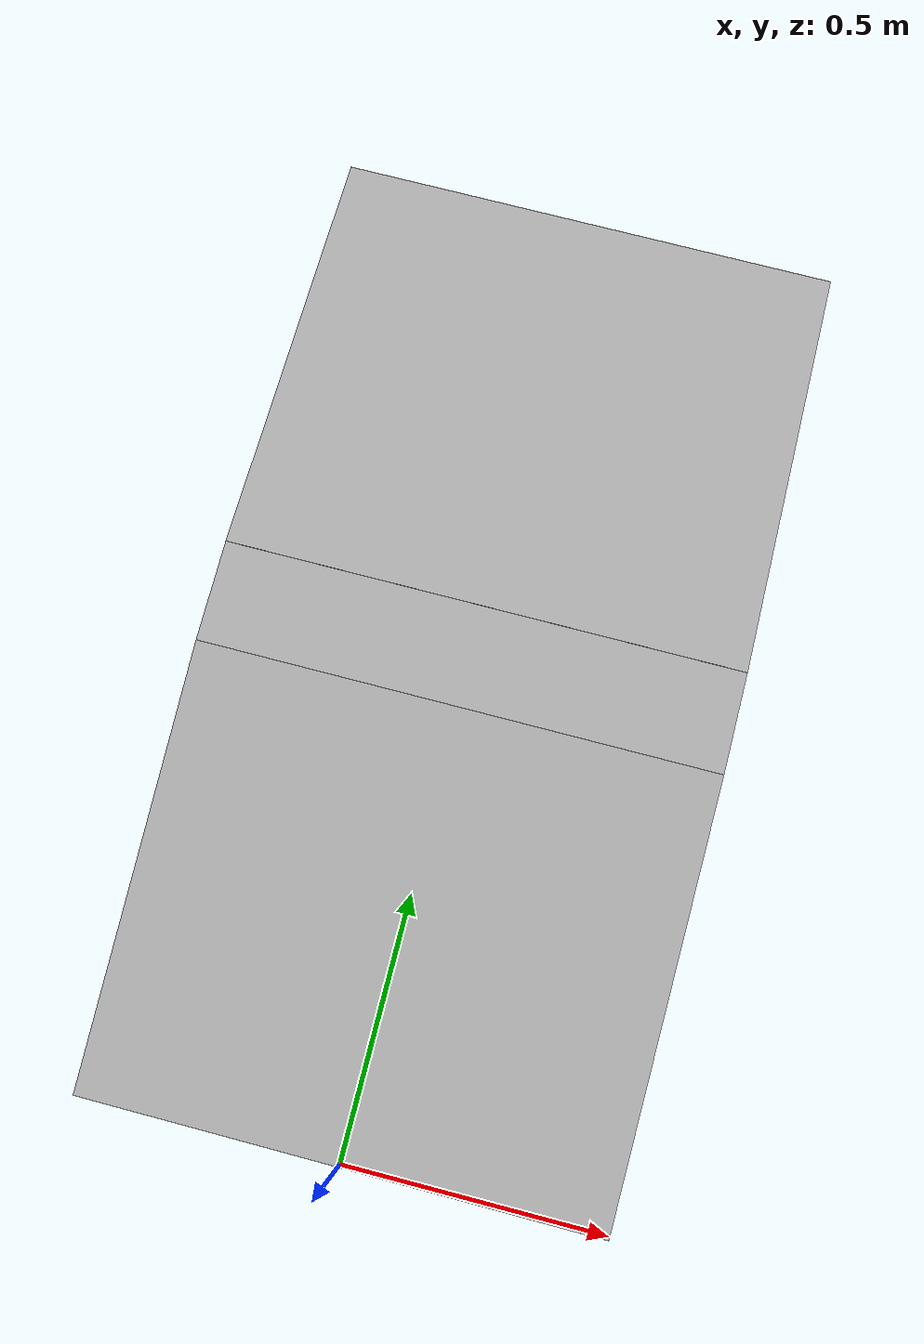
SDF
<?xml version="1.0" ?>
<sdf version="1.6">
  <model name="double_ramp_6deg_0p9m_0p2plat">
    <static>true</static>

    <link name="up_ramp">
      <pose>0 0.421555138 0.054002459 0.127409035 0 0</pose>
      <collision name="collision">
        <geometry>
          <box>
            <size>1.0 0.856946025 0.02</size>
          </box>
        </geometry>
      </collision>
      <visual name="visual">
        <geometry>
          <box>
            <size>1.0 0.856946025 0.02</size>
          </box>
        </geometry>
        <material>
          <script>
            <uri>file://media/materials/scripts/gazebo.material</uri>
            <name>Gazebo/Metal</name>
          </script>
          <ambient>0.7 0.7 0.7 1</ambient>
          <diffuse>0.7 0.7 0.7 1</diffuse>
          <specular>0.8 0.8 0.8 1</specular>
        </material>
      </visual>
    </link>

    <link name="platform">
      <pose>0 0.943110276 0.108004917 0 0 0</pose>
      <collision name="collision">
        <geometry>
          <box>
            <size>1.0 0.2 0.02</size>
          </box>
        </geometry>
      </collision>
      <visual name="visual">
        <geometry>
          <box>
            <size>1.0 0.2 0.02</size>
          </box>
        </geometry>
        <material>
          <script>
            <uri>file://media/materials/scripts/gazebo.material</uri>
            <name>Gazebo/Metal</name>
          </script>
          <ambient>0.7 0.7 0.7 1</ambient>
          <diffuse>0.7 0.7 0.7 1</diffuse>
          <specular>0.8 0.8 0.8 1</specular>
        </material>
      </visual>
    </link>

    <link name="down_ramp">
      <pose>0 1.464665414 0.054002459 -0.127409035 0 0</pose>
      <collision name="collision">
        <geometry>
          <box>
            <size>1.0 0.856946025 0.02</size>
          </box>
        </geometry>
      </collision>
      <visual name="visual">
        <geometry>
          <box>
            <size>1.0 0.856946025 0.02</size>
          </box>
        </geometry>
        <material>
          <script>
            <uri>file://media/materials/scripts/gazebo.material</uri>
            <name>Gazebo/Metal</name>
          </script>
          <ambient>0.7 0.7 0.7 1</ambient>
          <diffuse>0.7 0.7 0.7 1</diffuse>
          <specular>0.8 0.8 0.8 1</specular>
        </material>
      </visual>
    </link>
  </model>
</sdf>
